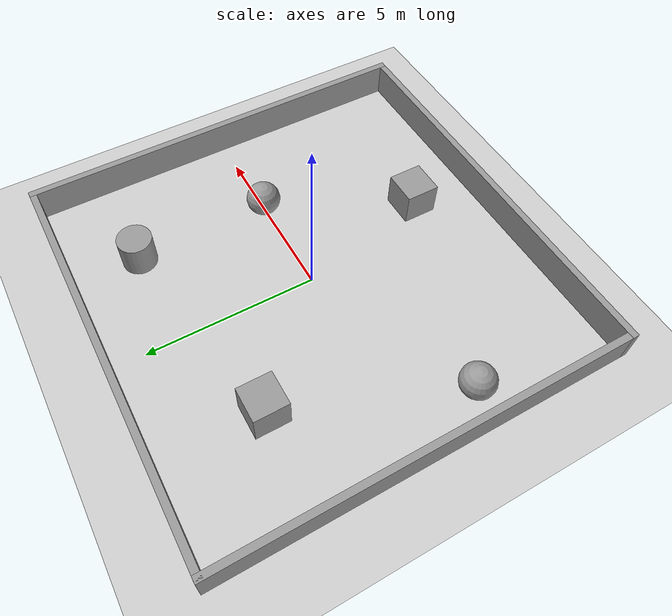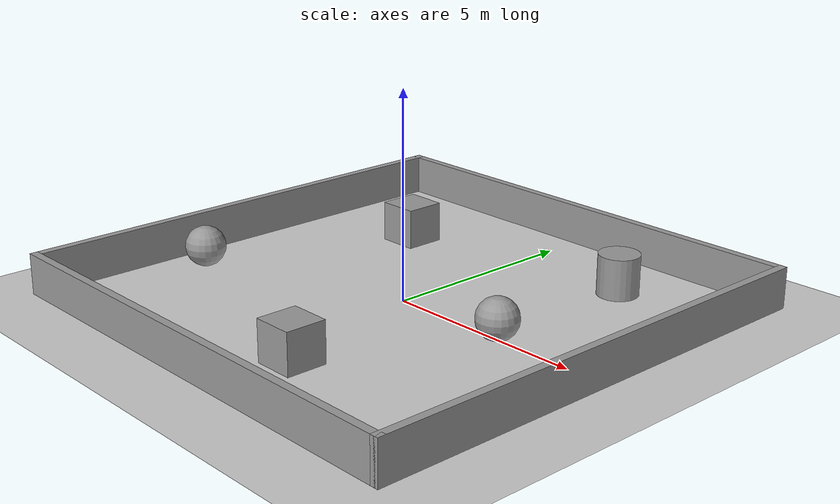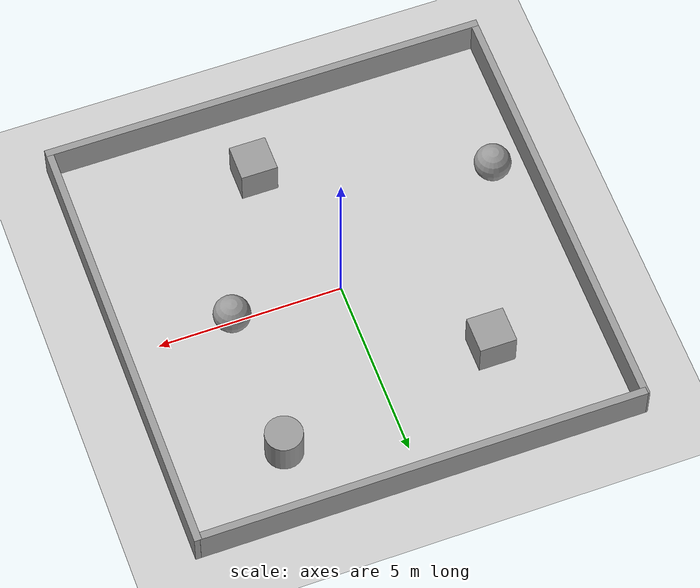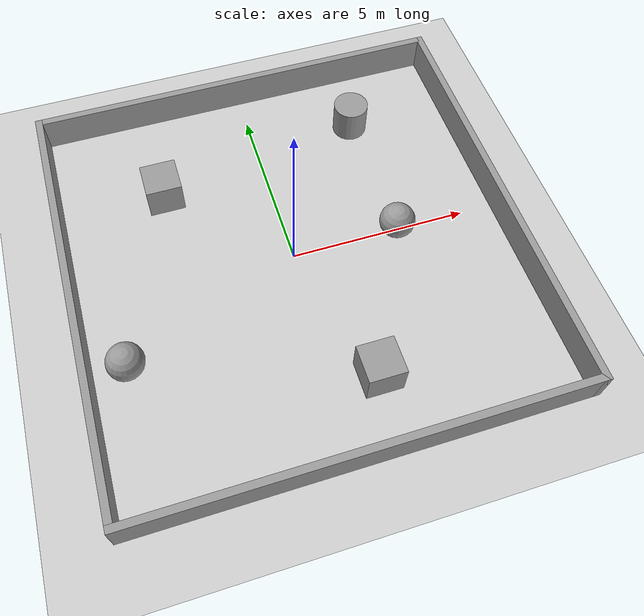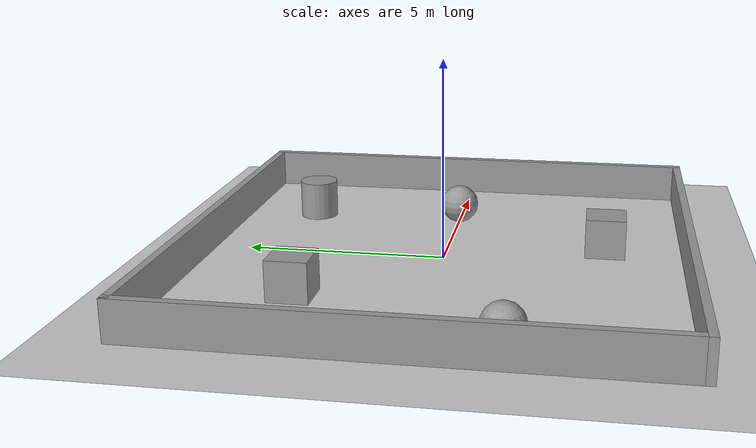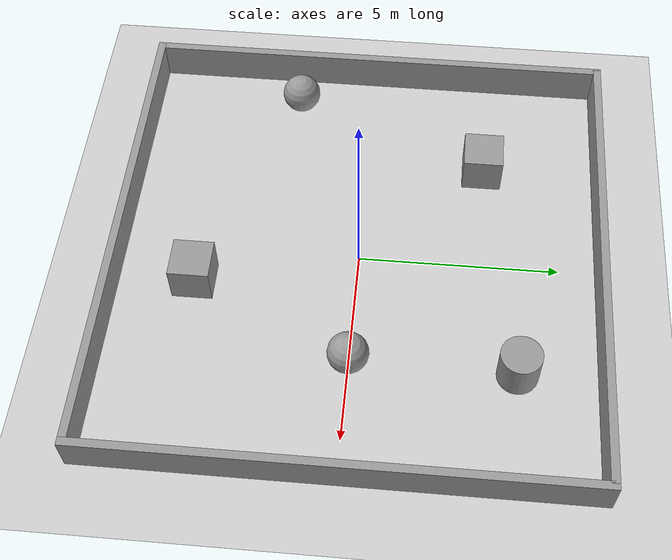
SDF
<sdf version="1.4">
 <world name="default">
  <light name="sun" type="directional">
   <pose>0 0 10 0 -0 0</pose>
   <diffuse>0.8 0.8 0.8 1</diffuse>
   <specular>0.2 0.2 0.2 1</specular>
   <attenuation>
    <range>1000</range>
    <constant>0.9</constant>
    <linear>0.01</linear>
    <quadratic>0.001</quadratic>
   </attenuation>
   <direction>-0.5 0.1 -0.9</direction>
  </light>
  <model name="ground_plane">
   <static>1</static>
   <link name="link">
    <collision name="collision">
     <geometry><plane><normal>0 0 1</normal><size>100 100</size></plane></geometry>
     <surface><friction><ode><mu>100</mu><mu2>50</mu2></ode></friction></surface>
    </collision>
    <visual name="visual">
     <cast_shadows>0</cast_shadows>
     <geometry><plane><normal>0 0 1</normal><size>100 100</size></plane></geometry>
     <material>
      <script><uri>file://media/materials/scripts/gazebo.material</uri><name>Gazebo/Grey</name></script>
     </material>
    </visual>
    <velocity_decay><linear>0</linear><angular>0</angular></velocity_decay>
   </link>
  </model>
  <physics type="ode">
   <max_step_size>0.001</max_step_size>
   <real_time_factor>1</real_time_factor>
   <real_time_update_rate>1000</real_time_update_rate>
   <gravity>0 0 -9.8</gravity>
  </physics>
  <scene><ambient>0.4 0.4 0.4 1</ambient><background>0.7 0.7 0.7 1</background><shadows>1</shadows></scene>
  <spherical_coordinates>
   <surface_model>EARTH_WGS84</surface_model>
   <latitude_deg>0</latitude_deg>
   <longitude_deg>0</longitude_deg>
   <elevation>0</elevation>
   <heading_deg>0</heading_deg>
  </spherical_coordinates>
  <model name="task_1">
   <static>1</static>
   <link name="Wall_16">
    <collision name="Wall_16_Collision">
     <geometry><box><size>12 0.2 1</size></box></geometry>
     <pose>0 0 0.5 0 -0 0</pose>
    </collision>
    <visual name="Wall_16_Visual">
     <pose>0 0 0.5 0 -0 0</pose>
     <geometry><box><size>12 0.2 1</size></box></geometry>
     <material>
      <script><uri>file://media/materials/scripts/gazebo.material</uri><name>Gazebo/Grey</name></script>
     </material>
    </visual>
    <velocity_decay><linear>0</linear><angular>0</angular></velocity_decay>
    <pose>-6 0.1 0 0 0 -1.5708</pose>
   </link>
   <link name="Wall_18">
    <collision name="Wall_18_Collision">
     <geometry><box><size>12.2 0.2 1</size></box></geometry>
     <pose>0 0 0.5 0 -0 0</pose>
    </collision>
    <visual name="Wall_18_Visual">
     <pose>0 0 0.5 0 -0 0</pose>
     <geometry><box><size>12.2 0.2 1</size></box></geometry>
     <material>
      <script><uri>file://media/materials/scripts/gazebo.material</uri><name>Gazebo/Grey</name></script>
     </material>
    </visual>
    <velocity_decay><linear>0</linear><angular>0</angular></velocity_decay>
    <pose>6 0 0 0 -0 1.5708</pose>
   </link>
   <link name="Wall_23">
    <collision name="Wall_23_Collision">
     <geometry><box><size>12 0.2 1</size></box></geometry>
     <pose>0 0 0.5 0 -0 0</pose>
    </collision>
    <visual name="Wall_23_Visual">
     <pose>0 0 0.5 0 -0 0</pose>
     <geometry><box><size>12 0.2 1</size></box></geometry>
     <material>
      <script><uri>file://media/materials/scripts/gazebo.material</uri><name>Gazebo/Grey</name></script>
     </material>
    </visual>
    <velocity_decay><linear>0</linear><angular>0</angular></velocity_decay>
    <pose>-0.050497 6.00163 0 0 -0 0</pose>
   </link>
   <link name="Wall_25">
    <collision name="Wall_25_Collision">
     <geometry><box><size>12.2 0.2 1</size></box></geometry>
     <pose>0 0 0.5 0 -0 0</pose>
    </collision>
    <visual name="Wall_25_Visual">
     <pose>0 0 0.5 0 -0 0</pose>
     <geometry><box><size>12.2 0.2 1</size></box></geometry>
     <material>
      <script><uri>file://media/materials/scripts/gazebo.material</uri><name>Gazebo/Grey</name></script>
     </material>
    </visual>
    <velocity_decay><linear>0</linear><angular>0</angular></velocity_decay>
    <pose>0 -6 0 0 -0 0</pose>
   </link>
   <static>1</static>
  </model>
  <model name="unit_cylinder_2">
   <pose>3 4 0.499992 -1e-06 -0 0</pose>
   <link name="link">
    <inertial>
     <mass>1</mass>
     <inertia><ixx>1</ixx><ixy>0</ixy><ixz>0</ixz><iyy>1</iyy><iyz>0</iyz><izz>1</izz></inertia>
    </inertial>
    <collision name="collision">
     <geometry><cylinder><radius>0.5</radius><length>1</length></cylinder></geometry>
    </collision>
    <visual name="visual">
     <geometry><cylinder><radius>0.5</radius><length>1</length></cylinder></geometry>
     <material>
      <script><uri>file://media/materials/scripts/gazebo.material</uri><name>Gazebo/Grey</name></script>
     </material>
    </visual>
    <velocity_decay><linear>0</linear><angular>0</angular></velocity_decay>
   </link>
   <static>0</static>
  </model>
  <model name="unit_sphere_1">
   <pose>3 0 0.5 0 -0 0</pose>
   <link name="link">
    <inertial>
     <mass>1</mass>
     <inertia><ixx>1</ixx><ixy>0</ixy><ixz>0</ixz><iyy>1</iyy><iyz>0</iyz><izz>1</izz></inertia>
    </inertial>
    <collision name="collision"><geometry><sphere><radius>0.5</radius></sphere></geometry></collision>
    <visual name="visual">
     <geometry><sphere><radius>0.5</radius></sphere></geometry>
     <material>
      <script><uri>file://media/materials/scripts/gazebo.material</uri><name>Gazebo/Grey</name></script>
     </material>
    </visual>
    <velocity_decay><linear>0</linear><angular>0</angular></velocity_decay>
   </link>
   <static>0</static>
  </model>
  <model name="unit_box_2_0">
   <pose>1 -4 0.5 0 -0 0</pose>
   <link name="link">
    <inertial>
     <mass>1</mass>
     <inertia><ixx>1</ixx><ixy>0</ixy><ixz>0</ixz><iyy>1</iyy><iyz>0</iyz><izz>1</izz></inertia>
    </inertial>
    <collision name="collision"><geometry><box><size>1 1 1</size></box></geometry></collision>
    <visual name="visual">
     <geometry><box><size>1 1 1</size></box></geometry>
     <material>
      <script><uri>file://media/materials/scripts/gazebo.material</uri><name>Gazebo/Grey</name></script>
     </material>
    </visual>
    <velocity_decay><linear>0</linear><angular>0</angular></velocity_decay>
   </link>
   <static>0</static>
  </model>
  <model name="unit_sphere_2">
   <pose>-5 -2 0.5 0 -0 0</pose>
   <link name="link">
    <inertial>
     <mass>1</mass>
     <inertia><ixx>1</ixx><ixy>0</ixy><ixz>0</ixz><iyy>1</iyy><iyz>0</iyz><izz>1</izz></inertia>
    </inertial>
    <collision name="collision"><geometry><sphere><radius>0.5</radius></sphere></geometry></collision>
    <visual name="visual">
     <geometry><sphere><radius>0.5</radius></sphere></geometry>
     <material>
      <script><uri>file://media/materials/scripts/gazebo.material</uri><name>Gazebo/Grey</name></script>
     </material>
    </visual>
    <velocity_decay><linear>0</linear><angular>0</angular></velocity_decay>
   </link>
   <static>0</static>
  </model>
  <model name="unit_box_3_0">
   <pose>-3 3 0.5 0 -0 0</pose>
   <link name="link">
    <inertial>
     <mass>1</mass>
     <inertia><ixx>1</ixx><ixy>0</ixy><ixz>0</ixz><iyy>1</iyy><iyz>0</iyz><izz>1</izz></inertia>
    </inertial>
    <collision name="collision"><geometry><box><size>1 1 1</size></box></geometry></collision>
    <visual name="visual">
     <geometry><box><size>1 1 1</size></box></geometry>
     <material>
      <script><uri>file://media/materials/scripts/gazebo.material</uri><name>Gazebo/Grey</name></script>
     </material>
    </visual>
    <velocity_decay><linear>0</linear><angular>0</angular></velocity_decay>
   </link>
   <static>0</static>
  </model>
 </world>
</sdf>
